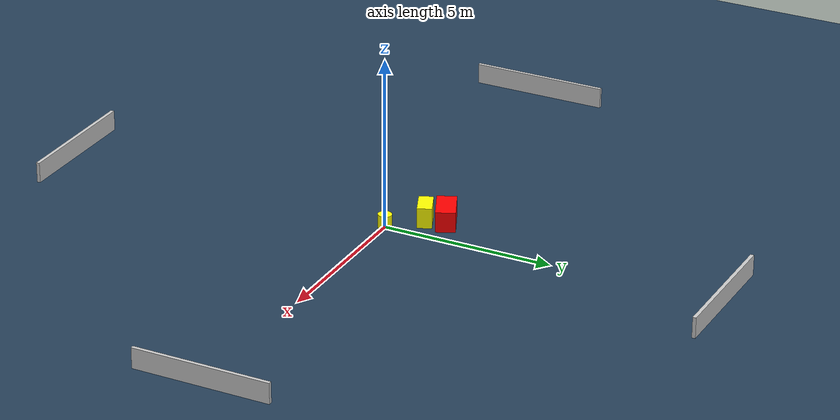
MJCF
<?xml version="1.0" ?>
<mujoco model="generated_environment">
  <option timestep="0.01" integrator="RK4" cone="elliptic"/>
  <default>
    <geom density="1"/>
  </default>
  <asset>
    <texture builtin="gradient" height="3072" name="skybox" rgb1="0.3 0.5 0.7" rgb2="0 0 0" type="skybox" width="512"/>
    <texture builtin="checker" height="300" name="groundplane" rgb1="0.2 0.3 0.4" rgb2="0.1 0.2 0.3" type="2d" width="300"/>
    <material name="groundplane" reflectance="0.2" texrepeat="5 5" texture="groundplane"/>
  </asset>
  <worldbody>
    <light dir="0 0 -1" directional="true" pos="0 0 1.5"/>
    <geom condim="3" friction="0.5 0.005 0.001" material="groundplane" name="floor" pos="0 0 0" size="0 0 0.05" type="plane"/>
    <body name="walls">
      <geom name="wall_1" condim="4" pos="-10.0 0.0 0.3" rgba="0.800000011920929 0.800000011920929 0.800000011920929 1.0" size="0.05 2.0 0.3" type="box"/>
      <geom name="wall_2" condim="4" pos="10.0 0.0 0.3" rgba="0.800000011920929 0.800000011920929 0.800000011920929 1.0" size="0.05 2.0 0.3" type="box"/>
      <geom name="wall_3" condim="4" pos="0.0 -10.0 0.3" rgba="0.800000011920929 0.800000011920929 0.800000011920929 1.0" size="2.0 0.05 0.3" type="box"/>
      <geom name="wall_4" condim="4" pos="0.0 10.0 0.3" rgba="0.800000011920929 0.800000011920929 0.800000011920929 1.0" size="2.0 0.05 0.3" type="box"/>
    </body>
    <body name="robot">
      <joint name="joint_x" type="slide" pos="0 0 0" axis="1 0 0"/>
      <joint name="joint_y" type="slide" pos="0 0 0" axis="0 1 0"/>
      <geom name="robot" type="cylinder" pos="0.0 0.0 0.2" size="0.2 0.2 0.0" mass="5.0" friction="1.0 0.005 0.0001" condim="4" rgba="1.0 1.0 0.0 1.0"/>
    </body>
    <body name="obstacle_1_movable">
      <geom name="obstacle_1_movable" condim="4" pos="-0.787267091685277 0.8419481848078616 0.3" euler="0 0 203.03836442270915" friction="0.0 0.005 0.001" rgba="1.0 1.0 0.0 1.0" size="0.3933137585634827 0.20971365361680083 0.3" type="box" mass="0.1"/>
      <joint type="free"/>
    </body>
    <body name="obstacle_2_static">
      <geom name="obstacle_2_static" condim="4" pos="-0.9486923241284918 1.4037207123756703 0.3" euler="0 0 24.317029691006688" friction="0.0 0.005 0.001" rgba="1.0 0.0 0.0 1.0" size="0.5315438952897586 0.2834140746401544 0.3" type="box"/>
    </body>
  </worldbody>
  <actuator>
    <motor name="actuator_x" joint="joint_x" gear="1" ctrlrange="-1 1"/>
    <motor name="actuator_y" joint="joint_y" gear="1" ctrlrange="-1 1"/>
  </actuator>
</mujoco>
